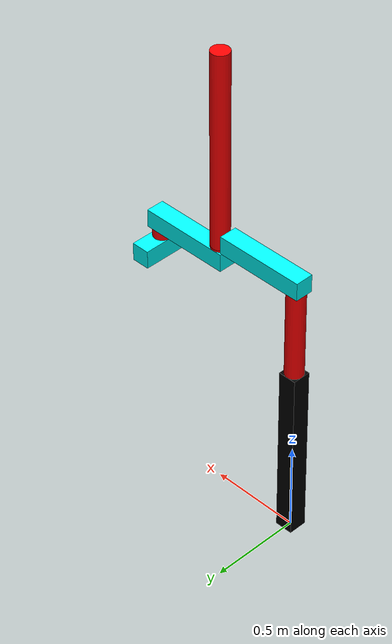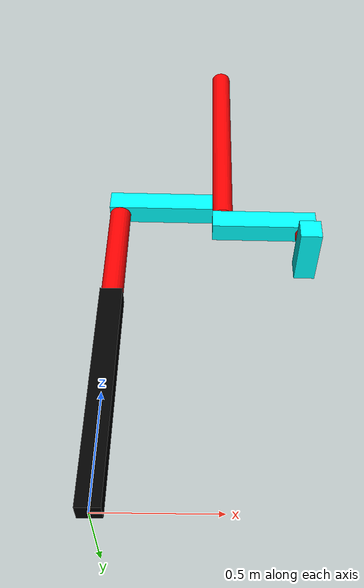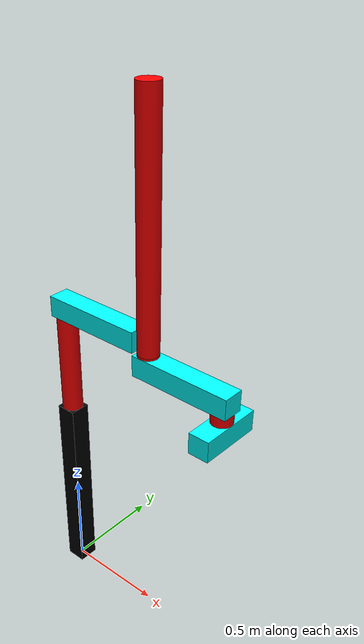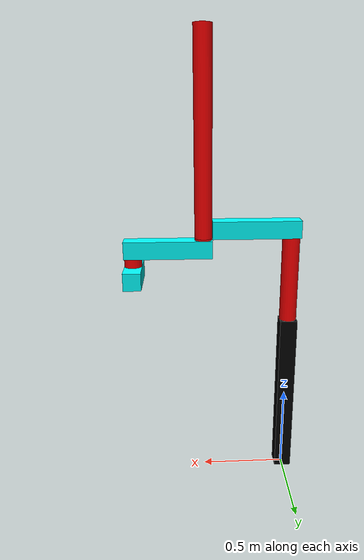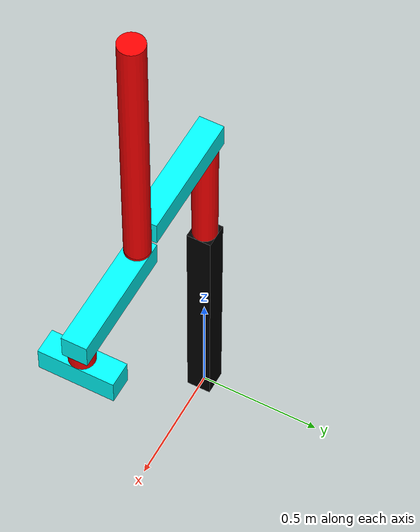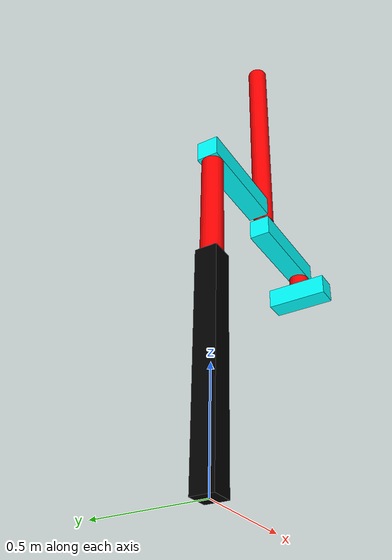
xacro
<?xml version="1.0"?>
<robot name="cr2016" xmlns:xacro="http://ros.org/wiki/xacro">
  <xacro:include filename="$(find cr2016_description)/model/common.xacro" />
  <xacro:include filename="$(find cr2016_description)/model/cylinder_link.urdf.xacro" />
  <xacro:include filename="$(find cr2016_description)/model/bar_link.urdf.xacro" />
  <xacro:include filename="$(find cr2016_description)/model/transmission.xacro" />

  <xacro:property name="cylinder1_length" value="0.5" />
  <xacro:property name="cylinder2_length" value="1.1" />
  <xacro:property name="cylinder3_length" value="0.01" />
  <xacro:property name="cylinder4_length" value="0.05" />
  <xacro:property name="bar1_length" value="0.5" />
  <xacro:property name="bar2_length" value="0.5" />
  <xacro:property name="bar3_length" value="0.3" />

  <link name="world" />
  <xacro:base_link suffix="1" height="1.0" >
    <origin xyz="0 0 ${1.0}" rpy="0 0 0" />
  </xacro:base_link>

  <xacro:cylinder_revolute_link suffix="1" parent="base_1_link"
    length="${cylinder1_length}" mass="1.0" >
    <origin xyz="0 0 ${cylinder1_length}" rpy="0 0 0" />
    <origin xyz="0 0 ${-cylinder1_length/2}" rpy="0 0 0" />
  </xacro:cylinder_revolute_link>

  <xacro:bar_link suffix="1" parent="cylinder_1_link" length="${bar1_length}" mass="1.0" >
    <origin xyz="${-0.05 +bar1_length} 0 0.05" rpy="0 0 0" />
    <origin xyz="${-bar1_length/2} 0 0" rpy="0 0 0" />
  </xacro:bar_link>

  <xacro:cylinder_prismatic_link suffix="2" parent="bar_1_link"
    length="${cylinder2_length}" mass="1.0" >
    <origin xyz="0.05 0 -0.05" rpy="0 0 0" />
    <origin xyz="0 0 ${cylinder2_length/2}" rpy="0 0 0" />
    <limit lower="${-cylinder2_length+0.1}" upper="0" velocity="100." effort="100.0" />
  </xacro:cylinder_prismatic_link>

  <xacro:cylinder_revolute_link suffix="3" parent="cylinder_2_link"
    length="${cylinder3_length}" mass="0.0" >
    <origin xyz="0 0 ${-cylinder3_length}" rpy="0 0 0" />
    <origin xyz="0 0 ${cylinder3_length/2}" rpy="0 0 0" />
  </xacro:cylinder_revolute_link>

  <xacro:bar_link suffix="2" parent="cylinder_3_link" length="${bar2_length}" mass="1.0" >
    <origin xyz="${-0.05 +bar2_length -0.05} 0 -0.1" rpy="0 0 0" />
    <origin xyz="${0.05 -bar2_length/2} 0 0.05" rpy="0 0 0" />
  </xacro:bar_link>

  <xacro:cylinder_revolute_link suffix="4" parent="bar_2_link"
    length="${cylinder4_length}" mass="1.0" >
    <origin xyz="0 0 ${-cylinder4_length}" rpy="0 0 0" />
    <origin xyz="0 0 ${cylinder4_length/2}" rpy="0 0 0" />
  </xacro:cylinder_revolute_link>

  <xacro:bar_link suffix="3" parent="cylinder_4_link" length="${bar3_length}" mass="1.0" >
    <origin xyz="0 0 -0.1" rpy="0 0 ${pi/2}" />
    <origin xyz="0 0 0.05" rpy="0 0 0" />
  </xacro:bar_link>

  <xacro:transmission_revolute suffix="revolute1" joint_name="cylinder_1_joint" reduction="1" />
  <xacro:transmission_prismatic suffix="prismatic1" joint_name="cylinder_2_joint" reduction="1" />
  <xacro:transmission_revolute suffix="revolute2" joint_name="cylinder_3_joint" reduction="1" />
  <xacro:transmission_revolute suffix="revolute3" joint_name="cylinder_4_joint" reduction="1" />

  <gazebo>
    <plugin name="gazebo_ros_control" filename="libgazebo_ros_control.so">
      <robotNamespace>/cr2016</robotNamespace>
    </plugin>
  </gazebo>
</robot>

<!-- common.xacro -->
<robot xmlns:xacro="http://ros.org/wiki/xacro">
  <xacro:property name="pi" params="3.141592653589793" />

  <xacro:macro name="base_link" params="suffix height *joint_origin">
    <link name="base_${suffix}_link" >
      <collision>
        <origin xyz="0 0 ${-height/2}" rpy="0 0 0" />
        <geometry>
          <box size="0.1 0.1 ${height}" />
        </geometry>
      </collision>
      <visual>
        <origin xyz="0 0 ${-height/2}" rpy="0 0 0" />
        <geometry>
          <box size="0.1 0.1 ${height}" />
        </geometry>
        <material name="Black" >
          <color rgba="0 0 0 1." />
        </material>
      </visual>
      <inertial>
        <origin xyz="0 0 ${-height/2}" rpy="0 0 0"/>
        <mass value="100.0"/>
        <inertia ixx="${(0.1*0.1 + height*height)*100.0/3}" iyy="${(0.1*0.1 + height*height)*100.0/3}" izz="${(0.1*0.1*2)*100.0/3}" ixy="0" ixz="0" iyz="0" />
      </inertial>
    </link>
    <joint name="fixed_${suffix}" type="fixed">
      <parent link="world"/>
      <child link="base_${suffix}_link"/>
      <xacro:insert_block name="joint_origin" />
    </joint>
  </xacro:macro>
</robot>

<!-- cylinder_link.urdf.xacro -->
<robot xmlns:xacro="http://ros.org/wiki/xacro">
  <xacro:include filename="$(find cr2016_description)/model/common.xacro" />

  <xacro:macro name="cylinder_revolute_link"
    params="suffix parent length mass *joint_origin *link_origin">
    <link name="cylinder_${suffix}_link" >
      <collision>
        <xacro:insert_block name="link_origin" />
        <geometry>
          <cylinder radius="0.05" length="${length}" />
        </geometry>
      </collision>
      <visual>
        <xacro:insert_block name="link_origin" />
        <geometry>
          <cylinder radius="0.05" length="${length}" />
        </geometry>
        <material name="Red" >
          <color rgba="1.0 0 0 1.0" />
        </material>
      </visual>
      <inertial>
        <xacro:insert_block name="link_origin" />
        <mass value="${mass}" />
        <inertia ixx="${0.05*0.05*mass/4 + length*length*mass/12}"
          iyy="${0.05*0.05*mass/4 + length*length*mass/12}"
          izz="${mass*0.05*0.05/2}"
          ixy="0" ixz="0" iyz="0" />
      </inertial>
    </link>
    <joint name="cylinder_${suffix}_joint" type="revolute">
      <axis xyz="0 0 1" />
      <parent link="${parent}" />
      <child link="cylinder_${suffix}_link" />
      <limit upper="${pi}" lower="-${pi}" velocity="100." effort="100.0" />
      <xacro:insert_block name="joint_origin" />
    </joint>
  </xacro:macro>

  <xacro:macro name="cylinder_prismatic_link"
    params="suffix parent length mass *joint_origin *link_origin *joint_limit">
    <link name="cylinder_${suffix}_link" >
      <collision>
        <xacro:insert_block name="link_origin" />
        <geometry>
          <cylinder radius="0.05" length="${length}" />
        </geometry>
      </collision>
      <visual>
        <xacro:insert_block name="link_origin" />
        <geometry>
          <cylinder radius="0.05" length="${length}" />
        </geometry>
      <material name="Red" >
        <color rgba="1.0 0 0 1.0" />
      </material>
      </visual>
      <inertial>
        <xacro:insert_block name="link_origin" />
        <mass value="${mass}" />
        <inertia ixx="${0.05*0.05*mass/4 + length*length*mass/12}"
          iyy="${0.05*0.05*mass/4 + length*length*mass/12}"
          izz="${mass*0.05*0.05/2}"
          ixy="0" ixz="0" iyz="0" />
      </inertial>
    </link>
    <joint name="cylinder_${suffix}_joint" type="prismatic">
      <axis xyz="0 0 1" />
      <parent link="${parent}" />
      <child link="cylinder_${suffix}_link" />
      <xacro:insert_block name="joint_limit" />
      <xacro:insert_block name="joint_origin" />
    </joint>
  </xacro:macro>
</robot>

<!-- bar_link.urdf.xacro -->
<robot xmlns:xacro="http://ros.org/wiki/xacro">
  <xacro:include filename="$(find cr2016_description)/model/common.xacro" />

  <xacro:macro name="bar_link" params="suffix parent length mass *joint_origin *link_origin" >
    <link name="bar_${suffix}_link" >
      <collision>
        <xacro:insert_block name="link_origin" />
        <geometry>
          <box size="${length} 0.1 0.1" />
        </geometry>
      </collision>
      <visual>
        <xacro:insert_block name="link_origin" />
        <geometry>
          <box size="${length} 0.1 0.1" />
        </geometry>
        <material name="Cyan" >
          <color rgba="0 1.0 1.0 1.0" />
        </material>
      </visual>
      <inertial>
        <mass value="${mass}" />
        <xacro:insert_block name="link_origin" />
        <inertia ixx="${0.05*0.05*2*mass/3}"
          iyy="${(0.05*0.05 + length*length) * mass / 3}"
          izz="${(0.05*0.05 + length*length) * mass / 3}"
          ixy="0" ixz="0" iyz="0" />
      </inertial>
    </link>
    <joint name="bar_${suffix}_joint" type="fixed">
      <parent link="${parent}" />
      <child link="bar_${suffix}_link" />
      <xacro:insert_block name="joint_origin" />
    </joint>
  </xacro:macro>
</robot>
